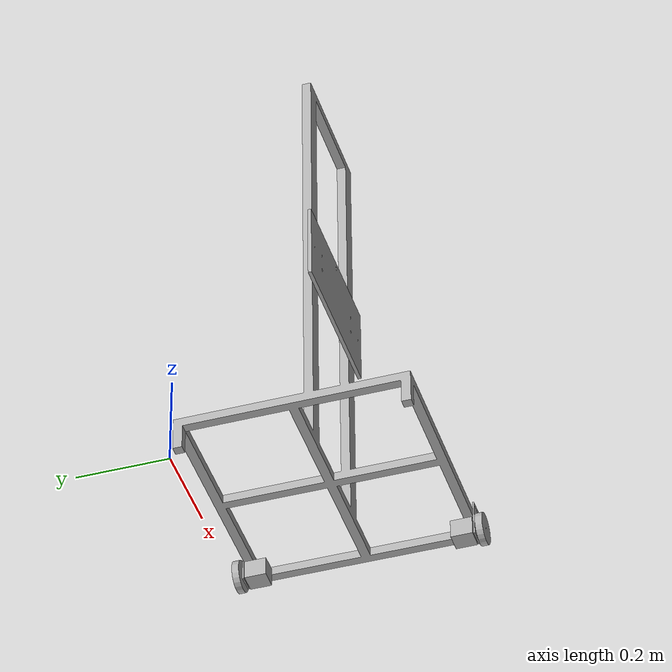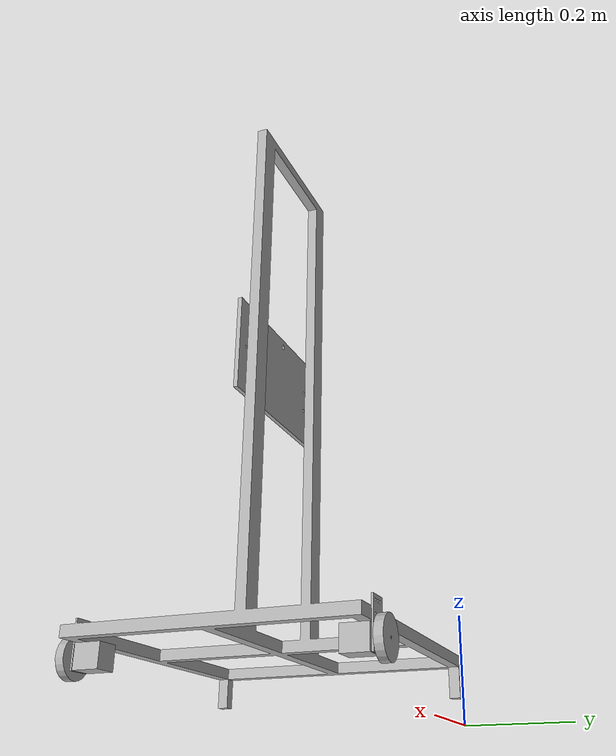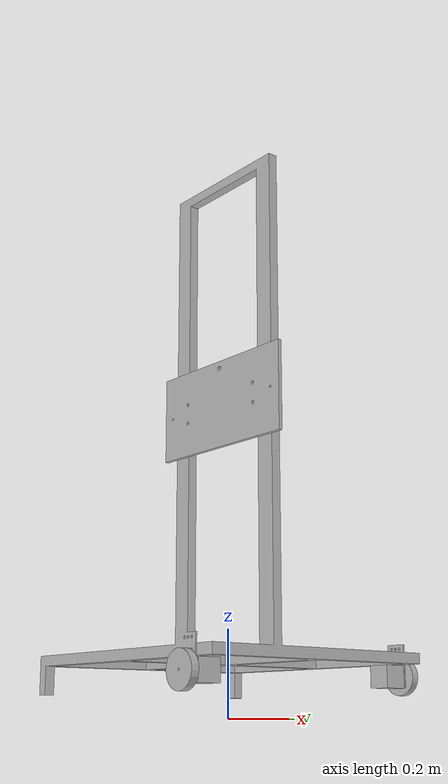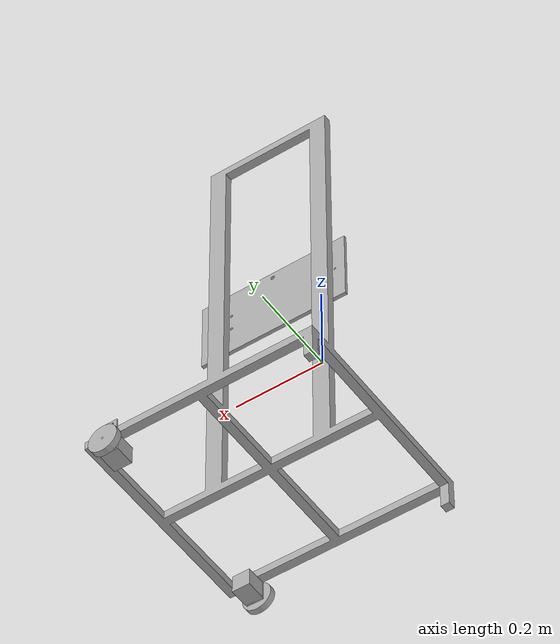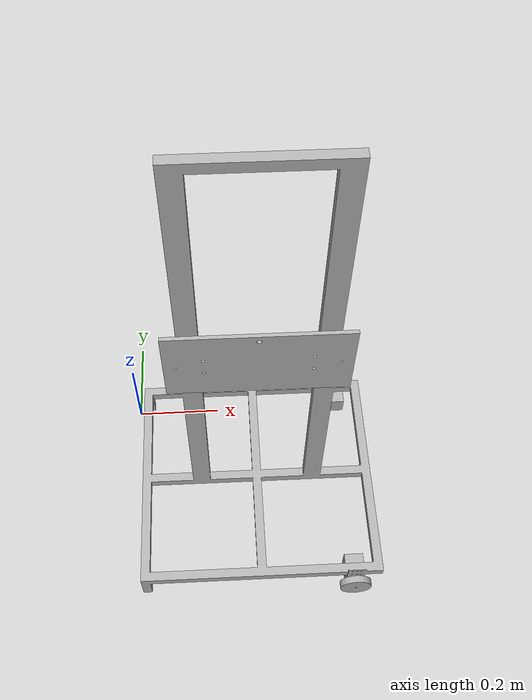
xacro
<?xml version="1.0" ?>
<robot name="forklift_2" xmlns:xacro="http://www.ros.org/wiki/xacro">

<xacro:include filename="$(find forklift_2_description)/urdf/materials.xacro" />
<xacro:include filename="$(find forklift_2_description)/urdf/forklift_2.trans" />
<xacro:include filename="$(find forklift_2_description)/urdf/forklift_2.gazebo" />
<link name="base_link">
  <inertial>
    <origin rpy="0 0 0" xyz="0.2881784545453406 -0.246131111003568 0.41813842343543284"/>
    <mass value="22.95146373047942"/>
    <inertia ixx="3.120017" ixy="-0.0" ixz="-0.022801" iyy="3.375861" iyz="-0.0" izz="0.855995"/>
  </inertial>
  <visual>
    <origin rpy="0 0 0" xyz="0 0 0"/>
    <geometry>
      <mesh filename="package://forklift_2_description/meshes/base_link.stl" scale="1 1 1"/>
    </geometry>
    <material name="silver"/>
  </visual>
  <collision>
    <origin rpy="0 0 0" xyz="0 0 0"/>
    <geometry>
      <mesh filename="package://forklift_2_description/meshes/base_link.stl" scale="1 1 1"/>
    </geometry>
  </collision>
</link>

<link name="motor_r_1">
  <inertial>
    <origin rpy="0 0 0" xyz="-2.5631070410536694e-07 0.0250966338301149 -3.6058979219211196e-08"/>
    <mass value="0.6695175856344919"/>
    <inertia ixx="0.000228" ixy="0.0" ixz="-0.0" iyy="0.000197" iyz="0.0" izz="0.000228"/>
  </inertial>
  <visual>
    <origin rpy="0 0 0" xyz="-0.50096 0.496131 -0.077016"/>
    <geometry>
      <mesh filename="package://forklift_2_description/meshes/motor_r_1.stl" scale="1 1 1"/>
    </geometry>
    <material name="silver"/>
  </visual>
  <collision>
    <origin rpy="0 0 0" xyz="-0.50096 0.496131 -0.077016"/>
    <geometry>
      <mesh filename="package://forklift_2_description/meshes/motor_r_1.stl" scale="1 1 1"/>
    </geometry>
  </collision>
</link>

<link name="motor_l_1">
  <inertial>
    <origin rpy="0 0 0" xyz="-2.6486049831131453e-07 -0.02509685124650271 -3.836534916146217e-08"/>
    <mass value="0.6695175856344924"/>
    <inertia ixx="0.000228" ixy="0.0" ixz="0.0" iyy="0.000197" iyz="0.0" izz="0.000228"/>
  </inertial>
  <visual>
    <origin rpy="0 0 0" xyz="-0.50096 -0.003869 -0.077016"/>
    <geometry>
      <mesh filename="package://forklift_2_description/meshes/motor_l_1.stl" scale="1 1 1"/>
    </geometry>
    <material name="silver"/>
  </visual>
  <collision>
    <origin rpy="0 0 0" xyz="-0.50096 -0.003869 -0.077016"/>
    <geometry>
      <mesh filename="package://forklift_2_description/meshes/motor_l_1.stl" scale="1 1 1"/>
    </geometry>
  </collision>
</link>

<link name="wheel_r_1">
  <inertial>
    <origin rpy="0 0 0" xyz="-2.555580629337584e-07 0.007499891291806171 -3.585592679711258e-08"/>
    <mass value="0.45084308948274227"/>
    <inertia ixx="0.000147" ixy="-0.0" ixz="0.0" iyy="0.000278" iyz="-0.0" izz="0.000147"/>
  </inertial>
  <visual>
    <origin rpy="0 0 0" xyz="-0.50096 0.518131 -0.077016"/>
    <geometry>
      <mesh filename="package://forklift_2_description/meshes/wheel_r_1.stl" scale="1 1 1"/>
    </geometry>
    <material name="silver"/>
  </visual>
  <collision>
    <origin rpy="0 0 0" xyz="-0.50096 0.518131 -0.077016"/>
    <geometry>
      <mesh filename="package://forklift_2_description/meshes/wheel_r_1.stl" scale="1 1 1"/>
    </geometry>
  </collision>
</link>

<link name="wheel_l_1">
  <inertial>
    <origin rpy="0 0 0" xyz="-2.656131437017706e-07 -0.0075001087081936965 -3.856835870119646e-08"/>
    <mass value="0.4508430894827419"/>
    <inertia ixx="0.000147" ixy="-0.0" ixz="0.0" iyy="0.000278" iyz="-0.0" izz="0.000147"/>
  </inertial>
  <visual>
    <origin rpy="0 0 0" xyz="-0.50096 -0.025869 -0.077016"/>
    <geometry>
      <mesh filename="package://forklift_2_description/meshes/wheel_l_1.stl" scale="1 1 1"/>
    </geometry>
    <material name="silver"/>
  </visual>
  <collision>
    <origin rpy="0 0 0" xyz="-0.50096 -0.025869 -0.077016"/>
    <geometry>
      <mesh filename="package://forklift_2_description/meshes/wheel_l_1.stl" scale="1 1 1"/>
    </geometry>
  </collision>
</link>

<link name="lift_plate_1">
  <inertial>
    <origin rpy="0 0 0" xyz="-0.15000025631456493 -0.004000110488605602 -9.133359653645812e-05"/>
    <mass value="4.05181393105422"/>
    <inertia ixx="0.010977" ixy="-0.0" ixz="0.0" iyy="0.054735" iyz="-0.0" izz="0.043801"/>
  </inertial>
  <visual>
    <origin rpy="0 0 0" xyz="-0.44096 0.256131 -0.619566"/>
    <geometry>
      <mesh filename="package://forklift_2_description/meshes/lift_plate_1.stl" scale="1 1 1"/>
    </geometry>
    <material name="silver"/>
  </visual>
  <collision>
    <origin rpy="0 0 0" xyz="-0.44096 0.256131 -0.619566"/>
    <geometry>
      <mesh filename="package://forklift_2_description/meshes/lift_plate_1.stl" scale="1 1 1"/>
    </geometry>
  </collision>
</link>

<joint name="Rigid_1" type="fixed">
  <origin rpy="0 0 0" xyz="0.50096 -0.496131 0.077016"/>
  <parent link="base_link"/>
  <child link="motor_r_1"/>
</joint>

<joint name="Rigid_2" type="fixed">
  <origin rpy="0 0 0" xyz="0.50096 0.003869 0.077016"/>
  <parent link="base_link"/>
  <child link="motor_l_1"/>
</joint>

<joint name="Rev1" type="continuous">
  <origin rpy="0 0 0" xyz="0.0 -0.022 0.0"/>
  <parent link="motor_r_1"/>
  <child link="wheel_r_1"/>
  <axis xyz="0.0 -1.0 0.0"/>
</joint>

<joint name="Rev2" type="continuous">
  <origin rpy="0 0 0" xyz="0.0 0.022 0.0"/>
  <parent link="motor_l_1"/>
  <child link="wheel_l_1"/>
  <axis xyz="-0.0 1.0 -0.0"/>
</joint>

<joint name="Slider1" type="prismatic">
  <origin rpy="0 0 0" xyz="0.44096 -0.256131 0.619566"/>
  <parent link="base_link"/>
  <child link="lift_plate_1"/>
  <axis xyz="0.0 0.0 1.0"/>
  <limit effort="100" lower="-0.35" upper="0.4" velocity="100"/>
</joint>

</robot>

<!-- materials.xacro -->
<robot name="forklift_2" xmlns:xacro="http://www.ros.org/wiki/xacro" >

<material name="silver">
  <color rgba="0.700 0.700 0.700 1.000"/>
</material>

</robot>

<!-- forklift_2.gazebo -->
<robot name="forklift_2" xmlns:xacro="http://www.ros.org/wiki/xacro" >

<xacro:property name="body_color" value="Gazebo/Silver" />

<gazebo>
  <plugin filename="libgazebo_ros_control.so" name="control"/>
</gazebo>
<gazebo reference="base_link">
  <material>${body_color}</material>
  <mu1>0.2</mu1>
  <mu2>0.2</mu2>
  <selfCollide>true</selfCollide>
  <gravity>true</gravity>
</gazebo>

<gazebo reference="motor_r_1">
  <material>${body_color}</material>
  <mu1>0.2</mu1>
  <mu2>0.2</mu2>
  <selfCollide>true</selfCollide>
</gazebo>

<gazebo reference="motor_l_1">
  <material>${body_color}</material>
  <mu1>0.2</mu1>
  <mu2>0.2</mu2>
  <selfCollide>true</selfCollide>
</gazebo>

<gazebo reference="wheel_r_1">
  <material>${body_color}</material>
  <mu1>0.2</mu1>
  <mu2>0.2</mu2>
  <selfCollide>true</selfCollide>
</gazebo>

<gazebo reference="wheel_l_1">
  <material>${body_color}</material>
  <mu1>0.2</mu1>
  <mu2>0.2</mu2>
  <selfCollide>true</selfCollide>
</gazebo>

<gazebo reference="lift_plate_1">
  <material>${body_color}</material>
  <mu1>0.2</mu1>
  <mu2>0.2</mu2>
  <selfCollide>true</selfCollide>
</gazebo>

</robot>
